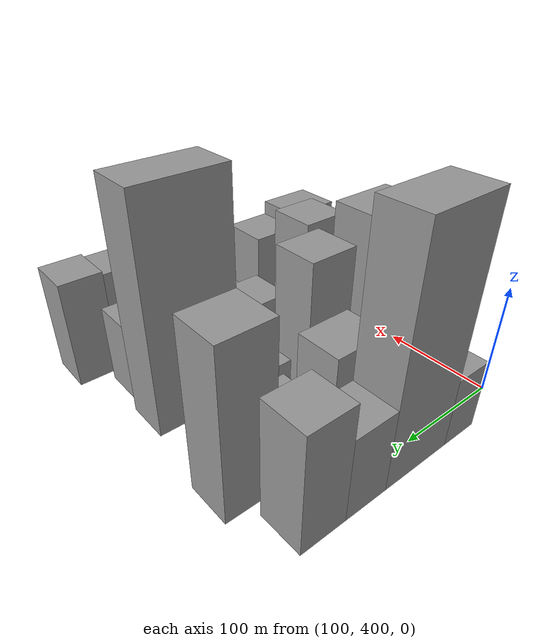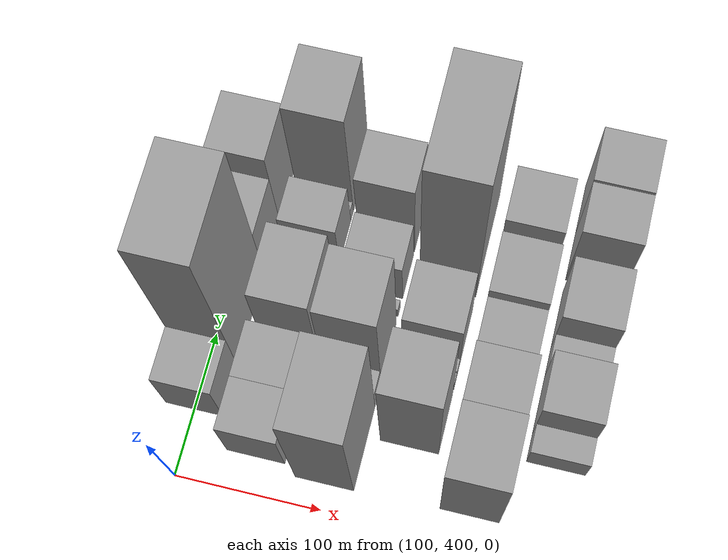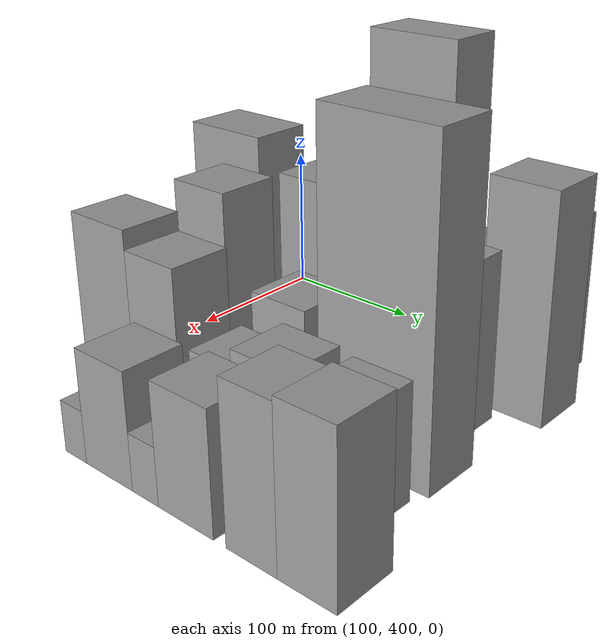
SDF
<sdf version="1.6">
 <world name="default">
  <model name="building_33">
   <static>1</static>
   <pose>100.0000 463.8958 0 0.000000 0.000000 0.000000</pose>
   <link name="link">
    <pose>0 0 31.50 0 0 0</pose>
    <collision name="collision"><geometry><box><size>40.0000 35.9964 63.0000</size></box></geometry></collision>
    <visual name="visual">
     <cast_shadows>0</cast_shadows>
     <geometry><box><size>40.0000 35.9964 63.0000</size></box></geometry>
     <material>
      <script>
       <uri>model://grey_wall/materials/scripts</uri>
       <uri>model://grey_wall/materials/textures</uri>
       <name>vrc/grey_wall</name>
      </script>
     </material>
    </visual>
   </link>
  </model>
  <model name="building_34">
   <static>1</static>
   <pose>100.0000 516.1357 0 0.000000 0.000000 0.000000</pose>
   <link name="link">
    <pose>0 0 103.50 0 0 0</pose>
    <collision name="collision"><geometry><box><size>40.0000 68.4833 207.0000</size></box></geometry></collision>
    <visual name="visual">
     <cast_shadows>0</cast_shadows>
     <geometry><box><size>40.0000 68.4833 207.0000</size></box></geometry>
     <material>
      <script>
       <uri>model://grey_wall/materials/scripts</uri>
       <uri>model://grey_wall/materials/textures</uri>
       <name>vrc/grey_wall</name>
      </script>
     </material>
    </visual>
   </link>
  </model>
  <model name="building_35">
   <static>1</static>
   <pose>100.0000 570.4830 0 0.000000 0.000000 0.000000</pose>
   <link name="link">
    <pose>0 0 37.50 0 0 0</pose>
    <collision name="collision"><geometry><box><size>40.0000 40.2113 75.0000</size></box></geometry></collision>
    <visual name="visual">
     <cast_shadows>0</cast_shadows>
     <geometry><box><size>40.0000 40.2113 75.0000</size></box></geometry>
     <material>
      <script>
       <uri>model://grey_wall/materials/scripts</uri>
       <uri>model://grey_wall/materials/textures</uri>
       <name>vrc/grey_wall</name>
      </script>
     </material>
    </visual>
   </link>
  </model>
  <model name="building_36">
   <static>1</static>
   <pose>100.0000 611.0884 0 0.000000 0.000000 0.000000</pose>
   <link name="link">
    <pose>0 0 52.50 0 0 0</pose>
    <collision name="collision"><geometry><box><size>40.0000 40.9995 105.0000</size></box></geometry></collision>
    <visual name="visual">
     <cast_shadows>0</cast_shadows>
     <geometry><box><size>40.0000 40.9995 105.0000</size></box></geometry>
     <material>
      <script>
       <uri>model://grey_wall/materials/scripts</uri>
       <uri>model://grey_wall/materials/textures</uri>
       <name>vrc/grey_wall</name>
      </script>
     </material>
    </visual>
   </link>
  </model>
  <model name="building_75">
   <static>1</static>
   <pose>149.0000 442.0141 0 0.000000 0.000000 0.000000</pose>
   <link name="link">
    <pose>0 0 33.00 0 0 0</pose>
    <collision name="collision"><geometry><box><size>40.0000 35.3231 66.0000</size></box></geometry></collision>
    <visual name="visual">
     <cast_shadows>0</cast_shadows>
     <geometry><box><size>40.0000 35.3231 66.0000</size></box></geometry>
     <material>
      <script>
       <uri>model://grey_wall/materials/scripts</uri>
       <uri>model://grey_wall/materials/textures</uri>
       <name>vrc/grey_wall</name>
      </script>
     </material>
    </visual>
   </link>
  </model>
  <model name="building_76">
   <static>1</static>
   <pose>149.0000 478.5795 0 0.000000 0.000000 0.000000</pose>
   <link name="link">
    <pose>0 0 33.00 0 0 0</pose>
    <collision name="collision"><geometry><box><size>40.0000 37.8076 66.0000</size></box></geometry></collision>
    <visual name="visual">
     <cast_shadows>0</cast_shadows>
     <geometry><box><size>40.0000 37.8076 66.0000</size></box></geometry>
     <material>
      <script>
       <uri>model://grey_wall/materials/scripts</uri>
       <uri>model://grey_wall/materials/textures</uri>
       <name>vrc/grey_wall</name>
      </script>
     </material>
    </visual>
   </link>
  </model>
  <model name="building_77">
   <static>1</static>
   <pose>149.0000 531.5656 0 0.000000 0.000000 0.000000</pose>
   <link name="link">
    <pose>0 0 45.00 0 0 0</pose>
    <collision name="collision"><geometry><box><size>40.0000 50.1646 90.0000</size></box></geometry></collision>
    <visual name="visual">
     <cast_shadows>0</cast_shadows>
     <geometry><box><size>40.0000 50.1646 90.0000</size></box></geometry>
     <material>
      <script>
       <uri>model://grey_wall/materials/scripts</uri>
       <uri>model://grey_wall/materials/textures</uri>
       <name>vrc/grey_wall</name>
      </script>
     </material>
    </visual>
   </link>
  </model>
  <model name="building_78">
   <static>1</static>
   <pose>149.0000 563.2147 0 0.000000 0.000000 0.000000</pose>
   <link name="link">
    <pose>0 0 13.50 0 0 0</pose>
    <collision name="collision"><geometry><box><size>40.0000 13.1335 27.0000</size></box></geometry></collision>
    <visual name="visual">
     <cast_shadows>0</cast_shadows>
     <geometry><box><size>40.0000 13.1335 27.0000</size></box></geometry>
     <material>
      <script>
       <uri>model://grey_wall/materials/scripts</uri>
       <uri>model://grey_wall/materials/textures</uri>
       <name>vrc/grey_wall</name>
      </script>
     </material>
    </visual>
   </link>
  </model>
  <model name="building_79">
   <static>1</static>
   <pose>149.0000 585.8208 0 0.000000 0.000000 0.000000</pose>
   <link name="link">
    <pose>0 0 30.00 0 0 0</pose>
    <collision name="collision"><geometry><box><size>40.0000 32.0787 60.0000</size></box></geometry></collision>
    <visual name="visual">
     <cast_shadows>0</cast_shadows>
     <geometry><box><size>40.0000 32.0787 60.0000</size></box></geometry>
     <material>
      <script>
       <uri>model://grey_wall/materials/scripts</uri>
       <uri>model://grey_wall/materials/textures</uri>
       <name>vrc/grey_wall</name>
      </script>
     </material>
    </visual>
   </link>
  </model>
  <model name="building_80">
   <static>1</static>
   <pose>149.0000 605.6164 0 0.000000 0.000000 0.000000</pose>
   <link name="link">
    <pose>0 0 9.00 0 0 0</pose>
    <collision name="collision"><geometry><box><size>40.0000 7.5125 18.0000</size></box></geometry></collision>
    <visual name="visual">
     <cast_shadows>0</cast_shadows>
     <geometry><box><size>40.0000 7.5125 18.0000</size></box></geometry>
     <material>
      <script>
       <uri>model://grey_wall/materials/scripts</uri>
       <uri>model://grey_wall/materials/textures</uri>
       <name>vrc/grey_wall</name>
      </script>
     </material>
    </visual>
   </link>
  </model>
  <model name="building_81">
   <static>1</static>
   <pose>149.0000 631.8215 0 0.000000 0.000000 0.000000</pose>
   <link name="link">
    <pose>0 0 73.50 0 0 0</pose>
    <collision name="collision"><geometry><box><size>40.0000 44.8977 147.0000</size></box></geometry></collision>
    <visual name="visual">
     <cast_shadows>0</cast_shadows>
     <geometry><box><size>40.0000 44.8977 147.0000</size></box></geometry>
     <material>
      <script>
       <uri>model://grey_wall/materials/scripts</uri>
       <uri>model://grey_wall/materials/textures</uri>
       <name>vrc/grey_wall</name>
      </script>
     </material>
    </visual>
   </link>
  </model>
  <model name="building_121">
   <static>1</static>
   <pose>198.0000 446.6114 0 0.000000 0.000000 0.000000</pose>
   <link name="link">
    <pose>0 0 76.50 0 0 0</pose>
    <collision name="collision"><geometry><box><size>40.0000 58.0837 153.0000</size></box></geometry></collision>
    <visual name="visual">
     <cast_shadows>0</cast_shadows>
     <geometry><box><size>40.0000 58.0837 153.0000</size></box></geometry>
     <material>
      <script>
       <uri>model://grey_wall/materials/scripts</uri>
       <uri>model://grey_wall/materials/textures</uri>
       <name>vrc/grey_wall</name>
      </script>
     </material>
    </visual>
   </link>
  </model>
  <model name="building_122">
   <static>1</static>
   <pose>198.0000 484.1990 0 0.000000 0.000000 0.000000</pose>
   <link name="link">
    <pose>0 0 16.50 0 0 0</pose>
    <collision name="collision"><geometry><box><size>40.0000 17.0915 33.0000</size></box></geometry></collision>
    <visual name="visual">
     <cast_shadows>0</cast_shadows>
     <geometry><box><size>40.0000 17.0915 33.0000</size></box></geometry>
     <material>
      <script>
       <uri>model://grey_wall/materials/scripts</uri>
       <uri>model://grey_wall/materials/textures</uri>
       <name>vrc/grey_wall</name>
      </script>
     </material>
    </visual>
   </link>
  </model>
  <model name="building_123">
   <static>1</static>
   <pose>198.0000 514.5575 0 0.000000 0.000000 0.000000</pose>
   <link name="link">
    <pose>0 0 67.50 0 0 0</pose>
    <collision name="collision"><geometry><box><size>40.0000 43.6255 135.0000</size></box></geometry></collision>
    <visual name="visual">
     <cast_shadows>0</cast_shadows>
     <geometry><box><size>40.0000 43.6255 135.0000</size></box></geometry>
     <material>
      <script>
       <uri>model://grey_wall/materials/scripts</uri>
       <uri>model://grey_wall/materials/textures</uri>
       <name>vrc/grey_wall</name>
      </script>
     </material>
    </visual>
   </link>
  </model>
  <model name="building_124">
   <static>1</static>
   <pose>198.0000 545.0130 0 0.000000 0.000000 0.000000</pose>
   <link name="link">
    <pose>0 0 7.50 0 0 0</pose>
    <collision name="collision"><geometry><box><size>40.0000 7.2856 15.0000</size></box></geometry></collision>
    <visual name="visual">
     <cast_shadows>0</cast_shadows>
     <geometry><box><size>40.0000 7.2856 15.0000</size></box></geometry>
     <material>
      <script>
       <uri>model://grey_wall/materials/scripts</uri>
       <uri>model://grey_wall/materials/textures</uri>
       <name>vrc/grey_wall</name>
      </script>
     </material>
    </visual>
   </link>
  </model>
  <model name="building_125">
   <static>1</static>
   <pose>198.0000 570.8861 0 0.000000 0.000000 0.000000</pose>
   <link name="link">
    <pose>0 0 30.00 0 0 0</pose>
    <collision name="collision"><geometry><box><size>40.0000 32.4605 60.0000</size></box></geometry></collision>
    <visual name="visual">
     <cast_shadows>0</cast_shadows>
     <geometry><box><size>40.0000 32.4605 60.0000</size></box></geometry>
     <material>
      <script>
       <uri>model://grey_wall/materials/scripts</uri>
       <uri>model://grey_wall/materials/textures</uri>
       <name>vrc/grey_wall</name>
      </script>
     </material>
    </visual>
   </link>
  </model>
  <model name="building_126">
   <static>1</static>
   <pose>198.0000 607.9021 0 0.000000 0.000000 0.000000</pose>
   <link name="link">
    <pose>0 0 54.00 0 0 0</pose>
    <collision name="collision"><geometry><box><size>40.0000 35.5715 108.0000</size></box></geometry></collision>
    <visual name="visual">
     <cast_shadows>0</cast_shadows>
     <geometry><box><size>40.0000 35.5715 108.0000</size></box></geometry>
     <material>
      <script>
       <uri>model://grey_wall/materials/scripts</uri>
       <uri>model://grey_wall/materials/textures</uri>
       <name>vrc/grey_wall</name>
      </script>
     </material>
    </visual>
   </link>
  </model>
  <model name="building_168">
   <static>1</static>
   <pose>247.0000 475.1241 0 0.000000 0.000000 0.000000</pose>
   <link name="link">
    <pose>0 0 67.50 0 0 0</pose>
    <collision name="collision"><geometry><box><size>40.0000 41.0963 135.0000</size></box></geometry></collision>
    <visual name="visual">
     <cast_shadows>0</cast_shadows>
     <geometry><box><size>40.0000 41.0963 135.0000</size></box></geometry>
     <material>
      <script>
       <uri>model://grey_wall/materials/scripts</uri>
       <uri>model://grey_wall/materials/textures</uri>
       <name>vrc/grey_wall</name>
      </script>
     </material>
    </visual>
   </link>
  </model>
  <model name="building_169">
   <static>1</static>
   <pose>247.0000 503.4959 0 0.000000 0.000000 0.000000</pose>
   <link name="link">
    <pose>0 0 9.00 0 0 0</pose>
    <collision name="collision"><geometry><box><size>40.0000 7.6473 18.0000</size></box></geometry></collision>
    <visual name="visual">
     <cast_shadows>0</cast_shadows>
     <geometry><box><size>40.0000 7.6473 18.0000</size></box></geometry>
     <material>
      <script>
       <uri>model://grey_wall/materials/scripts</uri>
       <uri>model://grey_wall/materials/textures</uri>
       <name>vrc/grey_wall</name>
      </script>
     </material>
    </visual>
   </link>
  </model>
  <model name="building_170">
   <static>1</static>
   <pose>247.0000 511.8338 0 0.000000 0.000000 0.000000</pose>
   <link name="link">
    <pose>0 0 10.50 0 0 0</pose>
    <collision name="collision"><geometry><box><size>40.0000 9.0287 21.0000</size></box></geometry></collision>
    <visual name="visual">
     <cast_shadows>0</cast_shadows>
     <geometry><box><size>40.0000 9.0287 21.0000</size></box></geometry>
     <material>
      <script>
       <uri>model://grey_wall/materials/scripts</uri>
       <uri>model://grey_wall/materials/textures</uri>
       <name>vrc/grey_wall</name>
      </script>
     </material>
    </visual>
   </link>
  </model>
  <model name="building_171">
   <static>1</static>
   <pose>247.0000 536.9219 0 0.000000 0.000000 0.000000</pose>
   <link name="link">
    <pose>0 0 40.50 0 0 0</pose>
    <collision name="collision"><geometry><box><size>40.0000 41.1475 81.0000</size></box></geometry></collision>
    <visual name="visual">
     <cast_shadows>0</cast_shadows>
     <geometry><box><size>40.0000 41.1475 81.0000</size></box></geometry>
     <material>
      <script>
       <uri>model://grey_wall/materials/scripts</uri>
       <uri>model://grey_wall/materials/textures</uri>
       <name>vrc/grey_wall</name>
      </script>
     </material>
    </visual>
   </link>
  </model>
  <model name="building_172">
   <static>1</static>
   <pose>247.0000 606.4196 0 0.000000 0.000000 0.000000</pose>
   <link name="link">
    <pose>0 0 100.50 0 0 0</pose>
    <collision name="collision"><geometry><box><size>40.0000 77.8477 201.0000</size></box></geometry></collision>
    <visual name="visual">
     <cast_shadows>0</cast_shadows>
     <geometry><box><size>40.0000 77.8477 201.0000</size></box></geometry>
     <material>
      <script>
       <uri>model://grey_wall/materials/scripts</uri>
       <uri>model://grey_wall/materials/textures</uri>
       <name>vrc/grey_wall</name>
      </script>
     </material>
    </visual>
   </link>
  </model>
  <model name="building_212">
   <static>1</static>
   <pose>296.0000 443.0182 0 0.000000 0.000000 0.000000</pose>
   <link name="link">
    <pose>0 0 60.00 0 0 0</pose>
    <collision name="collision"><geometry><box><size>40.0000 47.1544 120.0000</size></box></geometry></collision>
    <visual name="visual">
     <cast_shadows>0</cast_shadows>
     <geometry><box><size>40.0000 47.1544 120.0000</size></box></geometry>
     <material>
      <script>
       <uri>model://grey_wall/materials/scripts</uri>
       <uri>model://grey_wall/materials/textures</uri>
       <name>vrc/grey_wall</name>
      </script>
     </material>
    </visual>
   </link>
  </model>
  <model name="building_213">
   <static>1</static>
   <pose>296.0000 486.7247 0 0.000000 0.000000 0.000000</pose>
   <link name="link">
    <pose>0 0 54.00 0 0 0</pose>
    <collision name="collision"><geometry><box><size>40.0000 40.2586 108.0000</size></box></geometry></collision>
    <visual name="visual">
     <cast_shadows>0</cast_shadows>
     <geometry><box><size>40.0000 40.2586 108.0000</size></box></geometry>
     <material>
      <script>
       <uri>model://grey_wall/materials/scripts</uri>
       <uri>model://grey_wall/materials/textures</uri>
       <name>vrc/grey_wall</name>
      </script>
     </material>
    </visual>
   </link>
  </model>
  <model name="building_214">
   <static>1</static>
   <pose>296.0000 533.3447 0 0.000000 0.000000 0.000000</pose>
   <link name="link">
    <pose>0 0 31.50 0 0 0</pose>
    <collision name="collision"><geometry><box><size>40.0000 32.9815 63.0000</size></box></geometry></collision>
    <visual name="visual">
     <cast_shadows>0</cast_shadows>
     <geometry><box><size>40.0000 32.9815 63.0000</size></box></geometry>
     <material>
      <script>
       <uri>model://grey_wall/materials/scripts</uri>
       <uri>model://grey_wall/materials/textures</uri>
       <name>vrc/grey_wall</name>
      </script>
     </material>
    </visual>
   </link>
  </model>
  <model name="building_215">
   <static>1</static>
   <pose>296.0000 570.5655 0 0.000000 0.000000 0.000000</pose>
   <link name="link">
    <pose>0 0 37.50 0 0 0</pose>
    <collision name="collision"><geometry><box><size>40.0000 41.4600 75.0000</size></box></geometry></collision>
    <visual name="visual">
     <cast_shadows>0</cast_shadows>
     <geometry><box><size>40.0000 41.4600 75.0000</size></box></geometry>
     <material>
      <script>
       <uri>model://grey_wall/materials/scripts</uri>
       <uri>model://grey_wall/materials/textures</uri>
       <name>vrc/grey_wall</name>
      </script>
     </material>
    </visual>
   </link>
  </model>
  <model name="building_216">
   <static>1</static>
   <pose>296.0000 619.8694 0 0.000000 0.000000 0.000000</pose>
   <link name="link">
    <pose>0 0 36.00 0 0 0</pose>
    <collision name="collision"><geometry><box><size>40.0000 39.1478 72.0000</size></box></geometry></collision>
    <visual name="visual">
     <cast_shadows>0</cast_shadows>
     <geometry><box><size>40.0000 39.1478 72.0000</size></box></geometry>
     <material>
      <script>
       <uri>model://grey_wall/materials/scripts</uri>
       <uri>model://grey_wall/materials/textures</uri>
       <name>vrc/grey_wall</name>
      </script>
     </material>
    </visual>
   </link>
  </model>
  <model name="building_258">
   <static>1</static>
   <pose>345.0000 472.9228 0 0.000000 0.000000 0.000000</pose>
   <link name="link">
    <pose>0 0 16.50 0 0 0</pose>
    <collision name="collision"><geometry><box><size>40.0000 19.0335 33.0000</size></box></geometry></collision>
    <visual name="visual">
     <cast_shadows>0</cast_shadows>
     <geometry><box><size>40.0000 19.0335 33.0000</size></box></geometry>
     <material>
      <script>
       <uri>model://grey_wall/materials/scripts</uri>
       <uri>model://grey_wall/materials/textures</uri>
       <name>vrc/grey_wall</name>
      </script>
     </material>
    </visual>
   </link>
  </model>
  <model name="building_259">
   <static>1</static>
   <pose>345.0000 502.5234 0 0.000000 0.000000 0.000000</pose>
   <link name="link">
    <pose>0 0 36.00 0 0 0</pose>
    <collision name="collision"><geometry><box><size>40.0000 40.1677 72.0000</size></box></geometry></collision>
    <visual name="visual">
     <cast_shadows>0</cast_shadows>
     <geometry><box><size>40.0000 40.1677 72.0000</size></box></geometry>
     <material>
      <script>
       <uri>model://grey_wall/materials/scripts</uri>
       <uri>model://grey_wall/materials/textures</uri>
       <name>vrc/grey_wall</name>
      </script>
     </material>
    </visual>
   </link>
  </model>
  <model name="building_260">
   <static>1</static>
   <pose>345.0000 533.1188 0 0.000000 0.000000 0.000000</pose>
   <link name="link">
    <pose>0 0 18.00 0 0 0</pose>
    <collision name="collision"><geometry><box><size>40.0000 21.0232 36.0000</size></box></geometry></collision>
    <visual name="visual">
     <cast_shadows>0</cast_shadows>
     <geometry><box><size>40.0000 21.0232 36.0000</size></box></geometry>
     <material>
      <script>
       <uri>model://grey_wall/materials/scripts</uri>
       <uri>model://grey_wall/materials/textures</uri>
       <name>vrc/grey_wall</name>
      </script>
     </material>
    </visual>
   </link>
  </model>
  <model name="building_261">
   <static>1</static>
   <pose>345.0000 564.5662 0 0.000000 0.000000 0.000000</pose>
   <link name="link">
    <pose>0 0 37.50 0 0 0</pose>
    <collision name="collision"><geometry><box><size>40.0000 41.8716 75.0000</size></box></geometry></collision>
    <visual name="visual">
     <cast_shadows>0</cast_shadows>
     <geometry><box><size>40.0000 41.8716 75.0000</size></box></geometry>
     <material>
      <script>
       <uri>model://grey_wall/materials/scripts</uri>
       <uri>model://grey_wall/materials/textures</uri>
       <name>vrc/grey_wall</name>
      </script>
     </material>
    </visual>
   </link>
  </model>
  <model name="building_262">
   <static>1</static>
   <pose>345.0000 611.9518 0 0.000000 0.000000 0.000000</pose>
   <link name="link">
    <pose>0 0 48.00 0 0 0</pose>
    <collision name="collision"><geometry><box><size>40.0000 34.8994 96.0000</size></box></geometry></collision>
    <visual name="visual">
     <cast_shadows>0</cast_shadows>
     <geometry><box><size>40.0000 34.8994 96.0000</size></box></geometry>
     <material>
      <script>
       <uri>model://grey_wall/materials/scripts</uri>
       <uri>model://grey_wall/materials/textures</uri>
       <name>vrc/grey_wall</name>
      </script>
     </material>
    </visual>
   </link>
  </model>
  <model name="building_263">
   <static>1</static>
   <pose>345.0000 648.1949 0 0.000000 0.000000 0.000000</pose>
   <link name="link">
    <pose>0 0 49.50 0 0 0</pose>
    <collision name="collision"><geometry><box><size>40.0000 37.5869 99.0000</size></box></geometry></collision>
    <visual name="visual">
     <cast_shadows>0</cast_shadows>
     <geometry><box><size>40.0000 37.5869 99.0000</size></box></geometry>
     <material>
      <script>
       <uri>model://grey_wall/materials/scripts</uri>
       <uri>model://grey_wall/materials/textures</uri>
       <name>vrc/grey_wall</name>
      </script>
     </material>
    </visual>
   </link>
  </model>
 </world>
</sdf>
